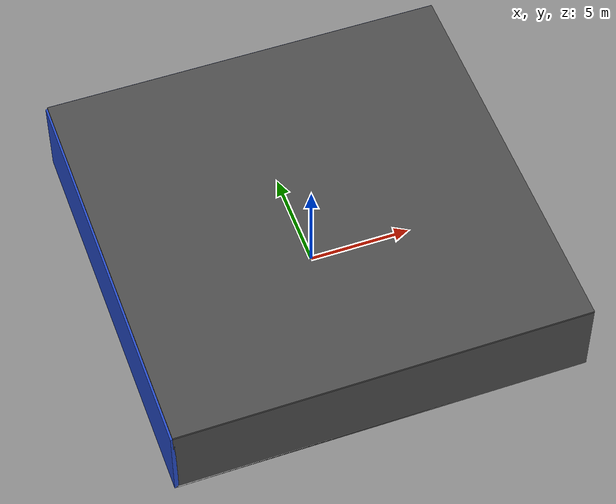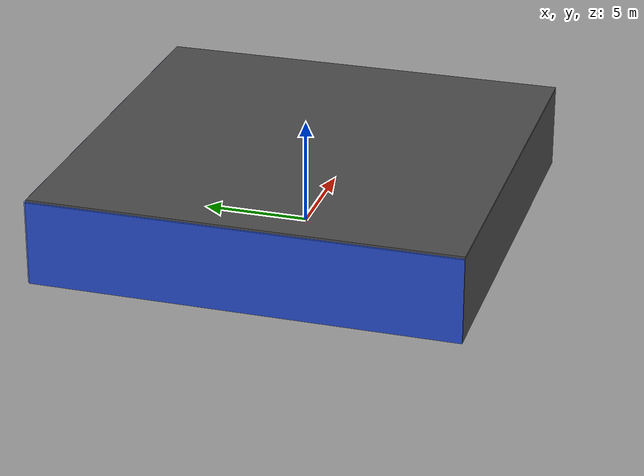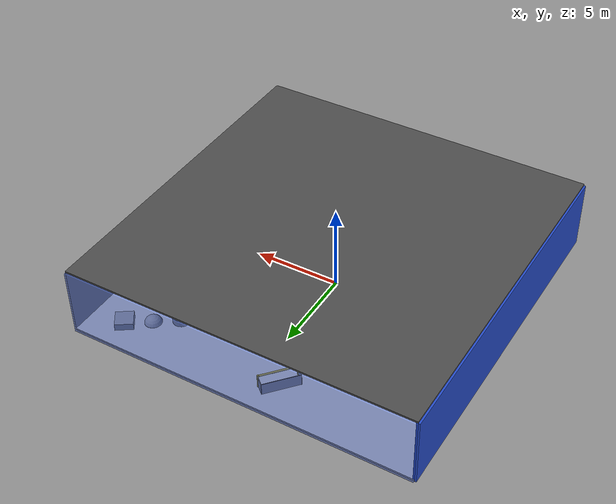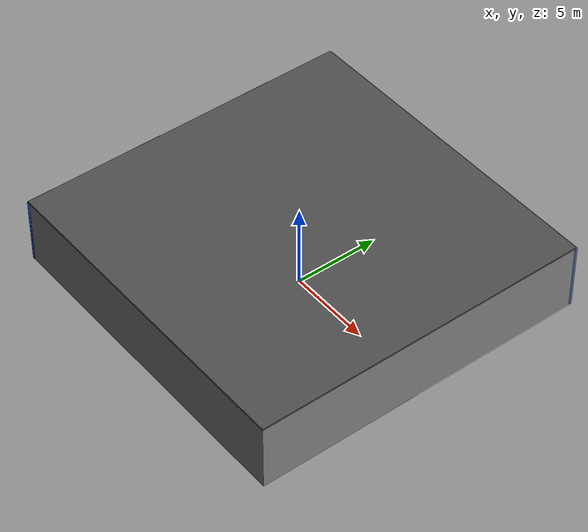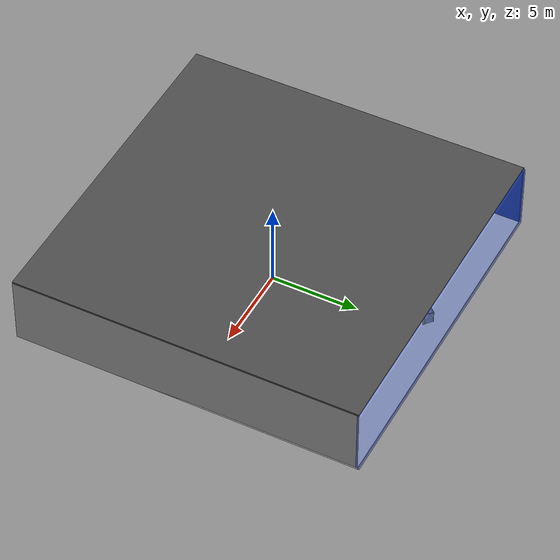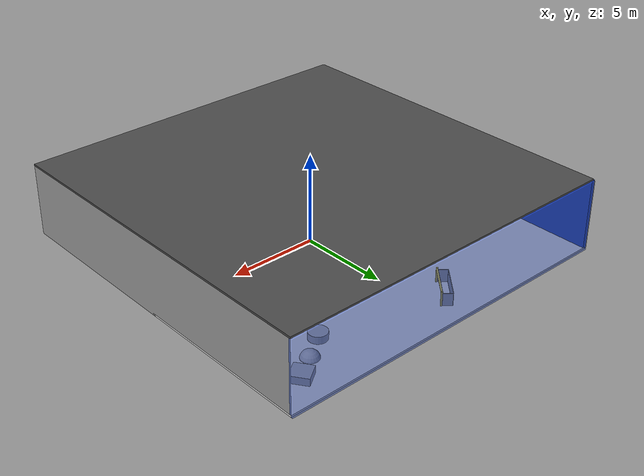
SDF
<sdf version="1.4">
 <world name="default">
  <physics type="ode">
   <max_step_size>0.001</max_step_size>
   <real_time_factor>1</real_time_factor>
   <real_time_update_rate>1000</real_time_update_rate>
   <gravity>0 0 -9.8</gravity>
  </physics>
  <scene><ambient>0.4 0.4 0.4 1</ambient><background>0.7 0.7 0.7 1</background><shadows>1</shadows></scene>
  <model name="Surrounding">
   <static>1</static>
   <link name="Ceiling">
    <collision name="Ceiling_Collision"><geometry><box><size>20 20 0.1</size></box></geometry></collision>
    <visual name="Ceiling_Visual">
     <geometry><box><size>20 20 0.1</size></box></geometry>
     <material>
      <script><uri>file://media/materials/scripts/gazebo.material</uri><name>Gazebo/Road</name></script>
     </material>
    </visual>
    <pose>0 0 4.05 0 0 0</pose>
   </link>
   <link name="Wall_South">
    <collision name="Wall_South_Collision">
     <geometry><box><size>20 0 4</size></box></geometry>
     <pose>0 0 2 0 -0 0</pose>
    </collision>
    <visual name="Wall_South_Visual">
     <pose>0 0 2 0 -0 0</pose>
     <geometry><box><size>20 0 4</size></box></geometry>
     <material>
      <script><uri>file://media/materials/scripts/gazebo.material</uri><name>Gazebo/DarkGrey</name></script>
     </material>
    </visual>
    <velocity_decay><linear>0</linear><angular>0</angular></velocity_decay>
    <pose>0 -10 0 0 -0 0</pose>
   </link>
   <link name="Wall_East">
    <collision name="Wall_21_Collision">
     <geometry><box><size>20 0 4</size></box></geometry>
     <pose>0 0 2 0 -0 0</pose>
    </collision>
    <visual name="Wall_21_Visual">
     <pose>0 0 2 0 -0 0</pose>
     <geometry><box><size>20 0 4</size></box></geometry>
     <material>
      <script><uri>file://media/materials/scripts/gazebo.material</uri><name>Gazebo/GreyGradientSky</name></script>
     </material>
    </visual>
    <velocity_decay><linear>0</linear><angular>0</angular></velocity_decay>
    <pose>10 0 0 0 -0 1.5708</pose>
   </link>
   <link name="Wall_North">
    <collision name="Wall_22_Collision">
     <geometry><box><size>20 0.2 4</size></box></geometry>
     <pose>0 0 2 0 -0 0</pose>
    </collision>
    <visual name="Wall_22_Visual">
     <pose>0 0 2 0 -0 0</pose>
     <geometry><box><size>20 0.2 4</size></box></geometry>
     <material>
      <script><uri>file://media/materials/scripts/gazebo.material</uri><name>Gazebo/BlueTransparent</name></script>
     </material>
    </visual>
    <velocity_decay><linear>0</linear><angular>0</angular></velocity_decay>
    <pose>0 10 0 0 -0 0</pose>
   </link>
   <link name="Wall_West">
    <collision name="Wall_23_Collision">
     <geometry><box><size>20 0.2 4</size></box></geometry>
     <pose>0 0 2 0 -0 0</pose>
    </collision>
    <visual name="Wall_23_Visual">
     <pose>0 0 2 0 -0 0</pose>
     <geometry><box><size>20 0.2 4</size></box></geometry>
     <material>
      <script><uri>file://media/materials/scripts/gazebo.material</uri><name>Gazebo/Blue</name></script>
     </material>
    </visual>
    <velocity_decay><linear>0</linear><angular>0</angular></velocity_decay>
    <pose>-10 0 0 0 0 -1.5708</pose>
   </link>
   <link name="Ground_link">
    <collision name="collision">
     <pose>0 0 .05 0 -0 0</pose>
     <geometry><box><size>20 20 0.1</size></box></geometry>
    </collision>
    <visual name="visual">
     <pose>0 0 .05 0 -0 0</pose>
     <geometry><box><size>20 20 0.1</size></box></geometry>
     <material>
      <script><uri>file://media/materials/scripts/gazebo.material</uri><name>Gazebo/White</name></script>
     </material>
    </visual>
   </link>
   <static>1</static>
  </model>
  <spherical_coordinates>
   <surface_model>EARTH_WGS84</surface_model>
   <latitude_deg>0</latitude_deg>
   <longitude_deg>0</longitude_deg>
   <elevation>0</elevation>
   <heading_deg>0</heading_deg>
  </spherical_coordinates>
  <light name="lightball_0" type="diffuse">
   <diffuse>0.8 0.8 0.8 1</diffuse>
   <specular>0.2 0.2 0.2 1</specular>
   <attenuation>
    <range>100</range>
    <constant>0.7</constant>
    <linear>0.01</linear>
    <quadratic>0.001</quadratic>
   </attenuation>
   <direction>-0.5 0.1 -0.9</direction>
   <pose>-6.70979222237 -2.51506123778 2.87221463147 0 0 0</pose>
  </light>
  <light name="lightball_1" type="diffuse">
   <diffuse>0.8 0.8 0.8 1</diffuse>
   <specular>0.2 0.2 0.2 1</specular>
   <attenuation>
    <range>100</range>
    <constant>0.7</constant>
    <linear>0.01</linear>
    <quadratic>0.001</quadratic>
   </attenuation>
   <direction>-0.5 0.1 -0.9</direction>
   <pose>5.22895093631 -8.63184618891 2.51570381054 0 0 0</pose>
  </light>
  <light name="lightball_2" type="diffuse">
   <diffuse>0.8 0.8 0.8 1</diffuse>
   <specular>0.2 0.2 0.2 1</specular>
   <attenuation>
    <range>100</range>
    <constant>0.7</constant>
    <linear>0.01</linear>
    <quadratic>0.001</quadratic>
   </attenuation>
   <direction>-0.5 0.1 -0.9</direction>
   <pose>-3.14382246578 -8.20996004445 2.83853759601 0 0 0</pose>
  </light>
  <light name="lightball_3" type="diffuse">
   <diffuse>0.8 0.8 0.8 1</diffuse>
   <specular>0.2 0.2 0.2 1</specular>
   <attenuation>
    <range>100</range>
    <constant>0.7</constant>
    <linear>0.01</linear>
    <quadratic>0.001</quadratic>
   </attenuation>
   <direction>-0.5 0.1 -0.9</direction>
   <pose>-4.67205918105 -6.55331534691 2.95305818488 0 0 0</pose>
  </light>
  <light name="lightball_4" type="diffuse">
   <diffuse>0.8 0.8 0.8 1</diffuse>
   <specular>0.2 0.2 0.2 1</specular>
   <attenuation>
    <range>100</range>
    <constant>0.7</constant>
    <linear>0.01</linear>
    <quadratic>0.001</quadratic>
   </attenuation>
   <direction>-0.5 0.1 -0.9</direction>
   <pose>-5.01006507828 8.52133605544 0.710252650231 0 0 0</pose>
  </light>
  <light name="lightball_5" type="diffuse">
   <diffuse>0.8 0.8 0.8 1</diffuse>
   <specular>0.2 0.2 0.2 1</specular>
   <attenuation>
    <range>100</range>
    <constant>0.7</constant>
    <linear>0.01</linear>
    <quadratic>0.001</quadratic>
   </attenuation>
   <direction>-0.5 0.1 -0.9</direction>
   <pose>0.870923875567 -7.31595818072 2.66376313227 0 0 0</pose>
  </light>
  <light name="lightball_6" type="diffuse">
   <diffuse>0.8 0.8 0.8 1</diffuse>
   <specular>0.2 0.2 0.2 1</specular>
   <attenuation>
    <range>100</range>
    <constant>0.7</constant>
    <linear>0.01</linear>
    <quadratic>0.001</quadratic>
   </attenuation>
   <direction>-0.5 0.1 -0.9</direction>
   <pose>-6.96999958384 -4.89216808458 3.24483100108 0 0 0</pose>
  </light>
  <light name="lightball_7" type="diffuse">
   <diffuse>0.8 0.8 0.8 1</diffuse>
   <specular>0.2 0.2 0.2 1</specular>
   <attenuation>
    <range>100</range>
    <constant>0.7</constant>
    <linear>0.01</linear>
    <quadratic>0.001</quadratic>
   </attenuation>
   <direction>-0.5 0.1 -0.9</direction>
   <pose>9.95984572397 1.00247894484 2.66747266184 0 0 0</pose>
  </light>
  <light name="lightball_8" type="diffuse">
   <diffuse>0.8 0.8 0.8 1</diffuse>
   <specular>0.2 0.2 0.2 1</specular>
   <attenuation>
    <range>100</range>
    <constant>0.7</constant>
    <linear>0.01</linear>
    <quadratic>0.001</quadratic>
   </attenuation>
   <direction>-0.5 0.1 -0.9</direction>
   <pose>9.06452686047 7.19964457519 2.86136632423 0 0 0</pose>
  </light>
  <light name="lightball_9" type="diffuse">
   <diffuse>0.8 0.8 0.8 1</diffuse>
   <specular>0.2 0.2 0.2 1</specular>
   <attenuation>
    <range>100</range>
    <constant>0.7</constant>
    <linear>0.01</linear>
    <quadratic>0.001</quadratic>
   </attenuation>
   <direction>-0.5 0.1 -0.9</direction>
   <pose>4.11919760149 5.02978106873 0.627659133964 0 0 0</pose>
  </light>
  <light name="lightball_10" type="diffuse">
   <diffuse>0.8 0.8 0.8 1</diffuse>
   <specular>0.2 0.2 0.2 1</specular>
   <attenuation>
    <range>100</range>
    <constant>0.7</constant>
    <linear>0.01</linear>
    <quadratic>0.001</quadratic>
   </attenuation>
   <direction>-0.5 0.1 -0.9</direction>
   <pose>-0.104865075795 0.659616235851 3.74518045179 0 0 0</pose>
  </light>
  <include><uri>model://cabinet</uri><pose>-8.16831656661 4.62595449639 0 0 0 2.36179728634</pose></include>
  <include><uri>model://cabinet</uri><pose>-4.15208454839 1.28714682921 0 0 0 0.324547674589</pose></include>
  <include><uri>model://table</uri><pose>-1.89748051059 0.805921094708 0 0 0 0.0419454649626</pose></include>
  <include>
   <uri>model://robocup_3Dsim_goal</uri>
   <pose>-1.24499691949 7.89600754842 0 0 0 2.42542180336</pose>
  </include>
  <include><uri>model://cabinet</uri><pose>1.7569946081 1.77388424369 0 0 0 3.13693340313</pose></include>
  <include>
   <uri>model://robocup_3Dsim_goal</uri>
   <pose>7.68385775191 -4.68316648205 0 0 0 2.97443306204</pose>
  </include>
  <include>
   <uri>model://textured_shapes</uri>
   <pose>6.77783463694 7.55890169807 0 0 0 2.17155872319</pose>
  </include>
 </world>
</sdf>

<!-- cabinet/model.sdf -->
<sdf version="1.5">
  <model name="cabinet">
    <static>true</static>
    <link name="cabinet_bottom_plate">
      <inertial>
        <pose>0 0 -1 0 0 0</pose>
        <inertia>
          <ixx>2.050000</ixx>
          <ixy>0</ixy>
          <ixz>0</ixz>
          <iyy>2.050000</iyy>
          <iyz>0</iyz>
          <izz>2.050000</izz>
        </inertia>
        <mass>25.000000</mass>
      </inertial>
      <collision name="cabinet_bottom_plate_geom">
        <pose>0 0 0.010000 0 0 0</pose>
        <geometry>
          <box>
            <size>0.450000 0.450000 0.020000</size>
          </box>
        </geometry>
      </collision>
      <visual name="cabinet_bottom_plate_geom_visual">
        <pose>0 0 0.010000 0 0 0</pose>
        <geometry>
          <box>
            <size>0.450000 0.450000 0.020000</size>
          </box>
        </geometry>
        <material>
          <script>
            <uri>model://media/materials/scripts/gazebo.material</uri>
            <name>Gazebo/Wood</name>
          </script>
        </material>
      </visual>
      <collision name="cabinet_bottom_plate_geom_cabinet_back_plate">
        <pose>0.235000 0 0.510000 0 0 0</pose>
        <geometry>
          <box>
            <size>0.020000 0.450000 1.020000</size>
          </box>
        </geometry>
      </collision>
      <visual name="cabinet_bottom_plate_geom_cabinet_back_plate_visual">
        <pose>0.235000 0 0.510000 0 0 0</pose>
        <geometry>
          <box>
            <size>0.020000 0.450000 1.020000</size>
          </box>
        </geometry>
        <material>
          <script>
            <uri>model://media/materials/scripts/gazebo.material</uri>
            <name>Gazebo/Wood</name>
          </script>
        </material>
      </visual>
      <collision name="cabinet_bottom_plate_geom_cabinet_left_plate">
        <pose>0 0.235000 0.510000 0 0 0</pose>
        <geometry>
          <box>
            <size>0.450000 0.020000 1.020000</size>
          </box>
        </geometry>
      </collision>
      <visual name="cabinet_bottom_plate_geom_cabinet_left_plate_visual">
        <pose>0 0.235000 0.510000 0 0 0</pose>
        <geometry>
          <box>
            <size>0.450000 0.020000 1.020000</size>
          </box>
        </geometry>
        <material>
          <script>
            <uri>model://media/materials/scripts/gazebo.material</uri>
            <name>Gazebo/Wood</name>
          </script>
        </material>
      </visual>
      <collision name="cabinet_bottom_plate_geom_cabinet_middle_plate">
        <pose>0 0 0.510000 0 0 0</pose>
        <geometry>
          <box>
            <size>0.450000 0.450000 0.020000</size>
          </box>
        </geometry>
      </collision>
      <visual name="cabinet_bottom_plate_geom_cabinet_middle_plate_visual">
        <pose>0 0 0.510000 0 0 0</pose>
        <geometry>
          <box>
            <size>0.450000 0.450000 0.020000</size>
          </box>
        </geometry>
        <material>
          <script>
            <uri>model://media/materials/scripts/gazebo.material</uri>
            <name>Gazebo/Wood</name>
          </script>
        </material>
      </visual>
      <collision name="cabinet_bottom_plate_geom_cabinet_right_plate">
        <pose>0 -0.235000 0.510000 0 0 0</pose>
        <geometry>
          <box>
            <size>0.450000 0.020000 1.020000</size>
          </box>
        </geometry>
      </collision>
      <visual name="cabinet_bottom_plate_geom_cabinet_right_plate_visual">
        <pose>0 -0.235000 0.510000 0 0 0</pose>
        <geometry>
          <box>
            <size>0.450000 0.020000 1.020000</size>
          </box>
        </geometry>
        <material>
          <script>
            <uri>model://media/materials/scripts/gazebo.material</uri>
            <name>Gazebo/Wood</name>
          </script>
        </material>
      </visual>
      <collision name="cabinet_bottom_plate_geom_cabinet_top_plate">
        <pose>0 0 1.010000 0 0 0</pose>
        <geometry>
          <box>
            <size>0.450000 0.450000 0.020000</size>
          </box>
        </geometry>
      </collision>
      <visual name="cabinet_bottom_plate_geom_cabinet_top_plate_visual">
        <pose>0 0 1.010000 0 0 0</pose>
        <geometry>
          <box>
            <size>0.450000 0.450000 0.020000</size>
          </box>
        </geometry>
        <material>
          <script>
            <uri>model://media/materials/scripts/gazebo.material</uri>
            <name>Gazebo/Wood</name>
          </script>
        </material>
      </visual>
    </link>
  </model>
</sdf>

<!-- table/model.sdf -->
<sdf version="1.5">
  <model name="table">
    <static>true</static>
    <link name="link">
      <collision name="surface">
        <pose>0 0 1.0 0 0 0</pose>
        <geometry>
          <box>
            <size>1.5 0.8 0.03</size>
          </box>
        </geometry>
        <surface>
          <friction>
            <ode>
              <mu>0.6</mu>
              <mu2>0.6</mu2>
            </ode>
          </friction>
        </surface>
      </collision>
      <visual name="visual1">
        <pose>0 0 1.0 0 0 0</pose>
        <geometry>
          <box>
            <size>1.5 0.8 0.03</size>
          </box>
        </geometry>
        <material>
          <script>
            <uri>model://media/materials/scripts/gazebo.material</uri>
            <name>Gazebo/Wood</name>
          </script>
        </material>
      </visual>
      <collision name="front_left_leg">
        <pose>0.68 0.38 0.5 0 0 0</pose>
        <geometry>
          <cylinder>
            <radius>0.02</radius>
            <length>1.0</length>
          </cylinder>
        </geometry>
      </collision>
      <visual name="front_left_leg">
        <pose>0.68 0.38 0.5 0 0 0</pose>
        <geometry>
          <cylinder>
            <radius>0.02</radius>
            <length>1.0</length>
          </cylinder>
        </geometry>
        <material>
          <script>
            <uri>model://media/materials/scripts/gazebo.material</uri>
            <name>Gazebo/Grey</name>
          </script>
        </material>
      </visual>
      <collision name="front_right_leg">
        <pose>0.68 -0.38 0.5 0 0 0</pose>
        <geometry>
          <cylinder>
            <radius>0.02</radius>
            <length>1.0</length>
          </cylinder>
        </geometry>
      </collision>
      <visual name="front_right_leg">
        <pose>0.68 -0.38 0.5 0 0 0</pose>
        <geometry>
          <cylinder>
            <radius>0.02</radius>
            <length>1.0</length>
          </cylinder>
        </geometry>
        <material>
          <script>
            <uri>model://media/materials/scripts/gazebo.material</uri>
            <name>Gazebo/Grey</name>
          </script>
        </material>
      </visual>
      <collision name="back_right_leg">
        <pose>-0.68 -0.38 0.5 0 0 0</pose>
        <geometry>
          <cylinder>
            <radius>0.02</radius>
            <length>1.0</length>
          </cylinder>
        </geometry>
      </collision>
      <visual name="back_right_leg">
        <pose>-0.68 -0.38 0.5 0 0 0</pose>
        <geometry>
          <cylinder>
            <radius>0.02</radius>
            <length>1.0</length>
          </cylinder>
        </geometry>
        <material>
          <script>
            <uri>model://media/materials/scripts/gazebo.material</uri>
            <name>Gazebo/Grey</name>
          </script>
        </material>
      </visual>
      <collision name="back_left_leg">
        <pose>-0.68 0.38 0.5 0 0 0</pose>
        <geometry>
          <cylinder>
            <radius>0.02</radius>
            <length>1.0</length>
          </cylinder>
        </geometry>
      </collision>
      <visual name="back_left_leg">
        <pose>-0.68 0.38 0.5 0 0 0</pose>
        <geometry>
          <cylinder>
            <radius>0.02</radius>
            <length>1.0</length>
          </cylinder>
        </geometry>
        <material>
          <script>
            <uri>model://media/materials/scripts/gazebo.material</uri>
            <name>Gazebo/Grey</name>
          </script>
        </material>
      </visual>
    </link>
  </model>
</sdf>

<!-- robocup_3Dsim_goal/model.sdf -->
<sdf version="1.5">
  <model name="robocup_3d_goal">
    <static>true</static>
    <link name="left_post">
      <pose>0 1.05 0.45 0 0 0</pose>
      <collision name="collision">
        <geometry>
          <cylinder>
            <radius>0.05</radius>
            <length>0.9</length>
          </cylinder>
        </geometry>
      </collision>
      <visual name="visual">
        <geometry>
          <cylinder>
            <radius>0.05</radius>
            <length>0.9</length>
          </cylinder>
        </geometry>
        <material>
          <script>
            <uri>file://media/materials/scripts/gazebo.material</uri>
            <name>Gazebo/ZincYellow</name>
          </script>
        </material>
      </visual>
    </link>
    <link name="left_support_horiz_lower">
      <pose>0.30 1.05 0.01 0 0 0</pose>
      <collision name="collision">
        <geometry>
          <box>
            <size>0.50 0.02 0.02</size>
          </box>
        </geometry>
      </collision>
      <visual name="visual">
        <geometry>
          <box>
            <size>0.50 0.02 0.02</size>
          </box>
        </geometry>
        <material>
          <script>
            <uri>file://media/materials/scripts/gazebo.material</uri>
            <name>Gazebo/White</name>
          </script>
        </material>
      </visual>
    </link>
    <link name="left_support_horiz_upper">
      <pose>0.30 1.05 0.79 0 0 0</pose>
      <collision name="collision">
        <geometry>
          <box>
            <size>0.50 0.02 0.02</size>
          </box>
        </geometry>
      </collision>
      <visual name="visual">
        <geometry>
          <box>
            <size>0.50 0.02 0.02</size>
          </box>
        </geometry>
        <material>
          <script>
            <uri>file://media/materials/scripts/gazebo.material</uri>
            <name>Gazebo/White</name>
          </script>
        </material>
      </visual>
    </link>
    <link name="left_support_vertical">
      <pose>0.56 1.05 0.4 0 1.5708 0</pose>
      <collision name="collision">
        <geometry>
          <box>
            <size>0.80 0.02 0.02</size>
          </box>
        </geometry>
      </collision>
      <visual name="visual">
        <geometry>
          <box>
            <size>0.80 0.02 0.02</size>
          </box>
        </geometry>
        <material>
          <script>
            <uri>file://media/materials/scripts/gazebo.material</uri>
            <name>Gazebo/White</name>
          </script>
        </material>
      </visual>
    </link>
    <link name="right_support_horiz_lower">
      <pose>0.30 -1.05 0.01 0 0 0</pose>
      <collision name="collision">
        <geometry>
          <box>
            <size>0.50 0.02 0.02</size>
          </box>
        </geometry>
      </collision>
      <visual name="visual">
        <geometry>
          <box>
            <size>0.50 0.02 0.02</size>
          </box>
        </geometry>
        <material>
          <script>
            <uri>file://media/materials/scripts/gazebo.material</uri>
            <name>Gazebo/White</name>
          </script>
        </material>
      </visual>
    </link>
    <link name="right_support_horiz_upper">
      <pose>0.30 -1.05 0.79 0 0 0</pose>
      <collision name="collision">
        <geometry>
          <box>
            <size>0.50 0.02 0.02</size>
          </box>
        </geometry>
      </collision>
      <visual name="visual">
        <geometry>
          <box>
            <size>0.50 0.02 0.02</size>
          </box>
        </geometry>
        <material>
          <script>
            <uri>file://media/materials/scripts/gazebo.material</uri>
            <name>Gazebo/White</name>
          </script>
        </material>
      </visual>
    </link>
    <link name="right_support_vertical">
      <pose>0.56 -1.05 0.4 0 1.5708 0</pose>
      <collision name="collision">
        <geometry>
          <box>
            <size>0.80 0.02 0.02</size>
          </box>
        </geometry>
      </collision>
      <visual name="visual">
        <geometry>
          <box>
            <size>0.80 0.02 0.02</size>
          </box>
        </geometry>
        <material>
          <script>
            <uri>file://media/materials/scripts/gazebo.material</uri>
            <name>Gazebo/White</name>
          </script>
        </material>
      </visual>
    </link>
    <link name="center_support_horiz_lower">
      <pose>0.56 0 0.01 0 1.5708 0</pose>
      <collision name="collision">
        <geometry>
          <box>
            <size>0.02 2.08 0.02</size>
          </box>
        </geometry>
      </collision>
      <visual name="visual">
        <geometry>
          <box>
            <size>0.02 2.08 0.02</size>
          </box>
        </geometry>
        <material>
          <script>
            <uri>file://media/materials/scripts/gazebo.material</uri>
            <name>Gazebo/White</name>
          </script>
        </material>
      </visual>
    </link>
    <link name="center_support_horiz_upper">
      <pose>0.56 0 0.79 0 1.5708 0</pose>
      <collision name="collision">
        <geometry>
          <box>
            <size>0.02 2.08 0.02</size>
          </box>
        </geometry>
      </collision>
      <visual name="visual">
        <geometry>
          <box>
            <size>0.02 2.08 0.02</size>
          </box>
        </geometry>
        <material>
          <script>
            <uri>file://media/materials/scripts/gazebo.material</uri>
            <name>Gazebo/White</name>
          </script>
        </material>
      </visual>
    </link>
    <link name="right_post">
      <pose>0 -1.05 0.45 0 0 0</pose>
      <collision name="collision">
        <geometry>
          <cylinder>
            <radius>0.05</radius>
            <length>0.9</length>
          </cylinder>
        </geometry>
      </collision>
      <visual name="visual">
        <geometry>
          <cylinder>
            <radius>0.05</radius>
            <length>0.9</length>
          </cylinder>
        </geometry>
        <material>
          <script>
            <uri>file://media/materials/scripts/gazebo.material</uri>
            <name>Gazebo/ZincYellow</name>
          </script>
        </material>
      </visual>
    </link>
    <link name="crossbar">
      <pose>0 0 0.85 1.57 1.57 0</pose>
      <collision name="collision">
        <geometry>
          <cylinder>
            <radius>0.05</radius>
            <length>2.0</length>
          </cylinder>
        </geometry>
      </collision>
      <visual name="visual">
        <geometry>
          <cylinder>
            <radius>0.05</radius>
            <length>2.0</length>
          </cylinder>
        </geometry>
        <material>
          <script>
            <uri>file://media/materials/scripts/gazebo.material</uri>
            <name>Gazebo/ZincYellow</name>
          </script>
        </material>
      </visual>
    </link>
    <link name="center_net">
      <pose>0.56 0 0.40 0 0 0</pose>
      <collision name="collision">
        <geometry>
          <box>
            <size>0.01 2.1 0.80</size>
          </box>
        </geometry>
      </collision>
      <visual name="visual">
        <geometry>
          <box>
            <size>0.01 2.1 0.80</size>
          </box>
        </geometry>
        <material>
          <script>
            <uri>model://../model_source/models/robocup09_spl_field/materials/scripts/</uri>
            <uri>model://../model_source/models/robocup09_spl_field/materials/textures/</uri>
            <name>RoboCup/Net</name>
          </script>
        </material>
      </visual>
    </link>
    <link name="left_net">
      <pose>0.30 1.05 0.40 0 0 0</pose>
      <collision name="collision">
        <geometry>
          <box>
            <size>0.50 0.01 0.76</size>
          </box>
        </geometry>
      </collision>
      <visual name="visual">
        <geometry>
          <box>
            <size>0.50 0.01 0.76</size>
          </box>
        </geometry>
        <material>
          <script>
            <uri>model://../model_source/models/robocup09_spl_field/materials/scripts/</uri>
            <uri>model://../model_source/models/robocup09_spl_field/materials/textures/</uri>
            <name>RoboCup/Net</name>
          </script>
        </material>
      </visual>
    </link>
    <link name="right_net">
      <pose>0.30 -1.05 0.40 0 0 0</pose>
      <collision name="collision">
        <geometry>
          <box>
            <size>0.50 0.01 0.76</size>
          </box>
        </geometry>
      </collision>
      <visual name="visual">
        <geometry>
          <box>
            <size>0.50 0.01 0.76</size>
          </box>
        </geometry>
        <material>
          <script>
            <uri>model://../model_source/models/robocup09_spl_field/materials/scripts/</uri>
            <uri>model://../model_source/models/robocup09_spl_field/materials/textures/</uri>
            <name>RoboCup/Net</name>
          </script>
        </material>
      </visual>
    </link>
  </model>
</sdf>

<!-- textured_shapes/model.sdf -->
<sdf version="1.6">
  <model name="textured_shapes">
    <pose>0 0 0.5 0 0 0</pose>
    <link name="box">
      <pose>0 -1.5 0 0 0 0</pose>
      <collision name="collision">
        <geometry>
          <box>
            <size>1 1 1</size>
          </box>
        </geometry>
      </collision>
      <visual name="visual">
        <geometry>
          <box>
            <size>1 1 1</size>
          </box>
        </geometry>
        <material>
          <script>
            <uri>model://../model_source/models/textured_shapes/materials/scripts</uri>
            <uri>model://../model_source/models/textured_shapes/materials/textures</uri>
            <name>TexturedShape/Squares</name>
          </script>
        </material>
      </visual>
    </link>
    <link name="sphere">
      <collision name="collision">
        <geometry>
          <sphere>
            <radius>0.5</radius>
          </sphere>
        </geometry>
      </collision>
      <visual name="visual">
        <geometry>
          <sphere>
            <radius>0.5</radius>
          </sphere>
        </geometry>
        <material>
          <script>
            <uri>model://../model_source/models/textured_shapes/materials/scripts</uri>
            <uri>model://../model_source/models/textured_shapes/materials/textures</uri>
            <name>TexturedShape/Squares</name>
          </script>
        </material>
      </visual>
    </link>
    <link name="cylinder">
      <pose>0 1.5 0 0 0 0</pose>
      <collision name="collision">
        <geometry>
          <cylinder>
            <radius>0.5</radius>
            <length>1</length>
          </cylinder>
        </geometry>
      </collision>
      <visual name="visual">
        <geometry>
          <cylinder>
            <radius>0.5</radius>
            <length>1</length>
          </cylinder>
        </geometry>
        <material>
          <script>
            <uri>model://../model_source/models/textured_shapes/materials/scripts</uri>
            <uri>model://../model_source/models/textured_shapes/materials/textures</uri>
            <name>TexturedShape/Squares</name>
          </script>
        </material>
      </visual>
    </link>
  </model>
</sdf>
